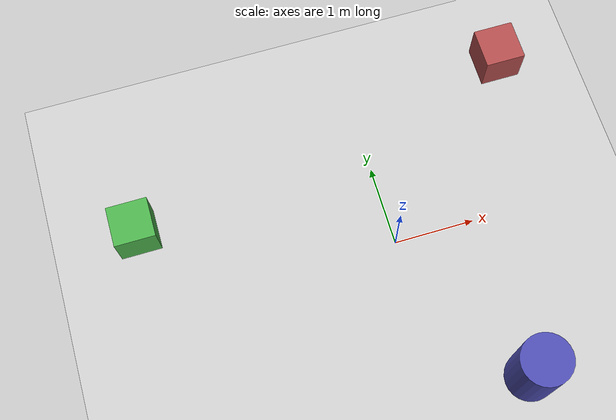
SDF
<?xml version="1.0" ?>
<sdf version="1.8">
  <world name="echowalker">
    <!-- Physics settings -->
    <physics name="4ms" type="ode">
      <max_step_size>0.004</max_step_size>
      <real_time_factor>1.0</real_time_factor>
      <real_time_update_rate>250</real_time_update_rate>
    </physics>

    <!-- Gravity -->
    <gravity>0 0 -9.81</gravity>

    <!-- Magnetic field -->
    <magnetic_field>6e-06 2.3e-05 -4.2e-05</magnetic_field>

    <!-- Atmosphere -->
    <atmosphere type='adiabatic'/>

    <!-- Scene settings -->
    <scene>
      <ambient>0.4 0.4 0.4 1</ambient>
      <background>0.7 0.7 0.7 1</background>
      <shadows>true</shadows>
    </scene>

    <!-- GUI settings -->
    <gui fullscreen='0'>
      <camera name='user_camera'>
        <pose>3 -3 2 0 0.4 2.4</pose>
        <view_controller>orbit</view_controller>
        <projection_type>perspective</projection_type>
      </camera>
    </gui>

    <!-- Ground plane -->
    <model name="ground_plane">
      <static>true</static>
      <link name="link">
        <collision name="collision">
          <geometry>
            <plane>
              <normal>0 0 1</normal>
              <size>100 100</size>
            </plane>
          </geometry>
          <surface>
            <friction>
              <ode>
                <mu>1.0</mu>
                <mu2>1.0</mu2>
              </ode>
            </friction>
          </surface>
        </collision>
        <visual name="visual">
          <geometry>
            <plane>
              <normal>0 0 1</normal>
              <size>100 100</size>
            </plane>
          </geometry>
          <material>
            <ambient>0.8 0.8 0.8 1</ambient>
            <diffuse>0.8 0.8 0.8 1</diffuse>
            <specular>0.8 0.8 0.8 1</specular>
          </material>
        </visual>
      </link>
    </model>

    <!-- Sun light source -->
    <light type="directional" name="sun">
      <cast_shadows>true</cast_shadows>
      <pose>0 0 10 0 0 0</pose>
      <diffuse>0.8 0.8 0.8 1</diffuse>
      <specular>0.2 0.2 0.2 1</specular>
      <attenuation>
        <range>1000</range>
        <constant>0.9</constant>
        <linear>0.01</linear>
        <quadratic>0.001</quadratic>
      </attenuation>
      <direction>-0.5 0.1 -0.9</direction>
    </light>

    <!-- Additional ambient light -->
    <light name="ambient_light" type="directional">
      <cast_shadows>false</cast_shadows>
      <pose>0 0 10 0 0 0</pose>
      <diffuse>0.5 0.5 0.5 1</diffuse>
      <specular>0.1 0.1 0.1 1</specular>
      <direction>0 0 -1</direction>
    </light>

    <!-- Some obstacles for testing -->
    <model name="box_obstacle_1">
      <pose>2 2 0.25 0 0 0</pose>
      <static>true</static>
      <link name="link">
        <collision name="collision">
          <geometry>
            <box>
              <size>0.5 0.5 0.5</size>
            </box>
          </geometry>
        </collision>
        <visual name="visual">
          <geometry>
            <box>
              <size>0.5 0.5 0.5</size>
            </box>
          </geometry>
          <material>
            <ambient>0.7 0.3 0.3 1</ambient>
            <diffuse>0.7 0.3 0.3 1</diffuse>
          </material>
        </visual>
      </link>
    </model>

    <model name="box_obstacle_2">
      <pose>-3 1 0.25 0 0 0</pose>
      <static>true</static>
      <link name="link">
        <collision name="collision">
          <geometry>
            <box>
              <size>0.5 0.5 0.5</size>
            </box>
          </geometry>
        </collision>
        <visual name="visual">
          <geometry>
            <box>
              <size>0.5 0.5 0.5</size>
            </box>
          </geometry>
          <material>
            <ambient>0.3 0.7 0.3 1</ambient>
            <diffuse>0.3 0.7 0.3 1</diffuse>
          </material>
        </visual>
      </link>
    </model>

    <model name="cylinder_obstacle">
      <pose>1 -2 0.5 0 0 0</pose>
      <static>true</static>
      <link name="link">
        <collision name="collision">
          <geometry>
            <cylinder>
              <radius>0.3</radius>
              <length>1.0</length>
            </cylinder>
          </geometry>
        </collision>
        <visual name="visual">
          <geometry>
            <cylinder>
              <radius>0.3</radius>
              <length>1.0</length>
            </cylinder>
          </geometry>
          <material>
            <ambient>0.3 0.3 0.7 1</ambient>
            <diffuse>0.3 0.3 0.7 1</diffuse>
          </material>
        </visual>
      </link>
    </model>

  </world>
</sdf>
